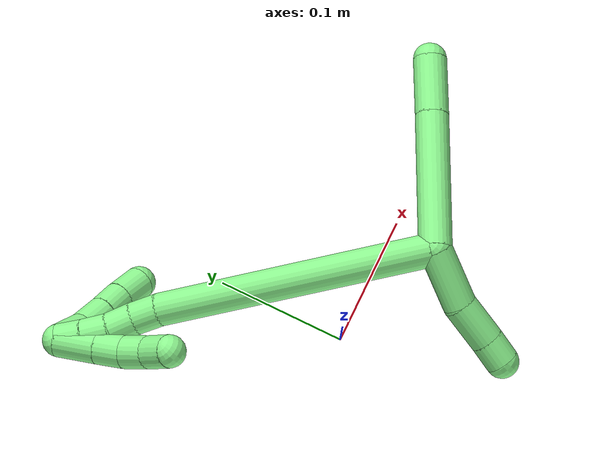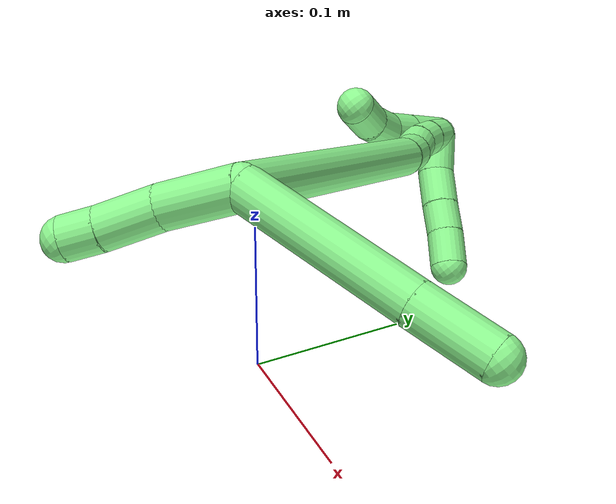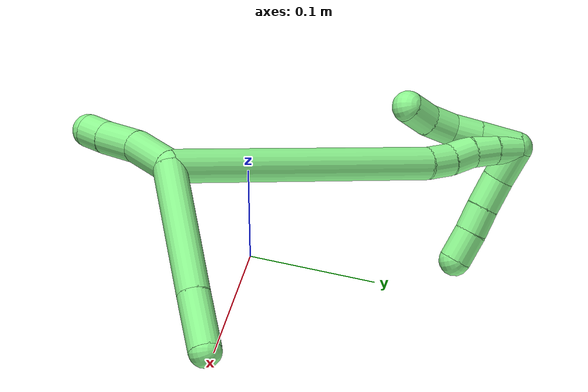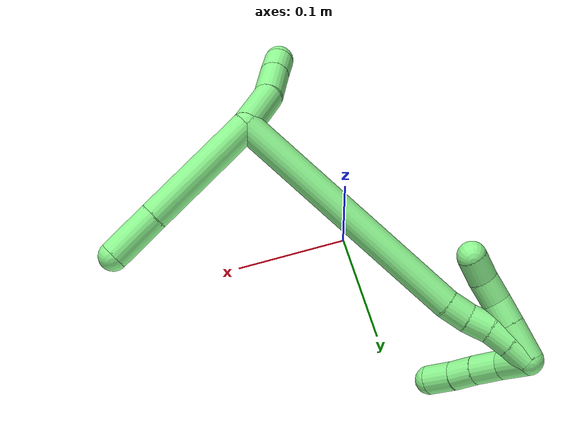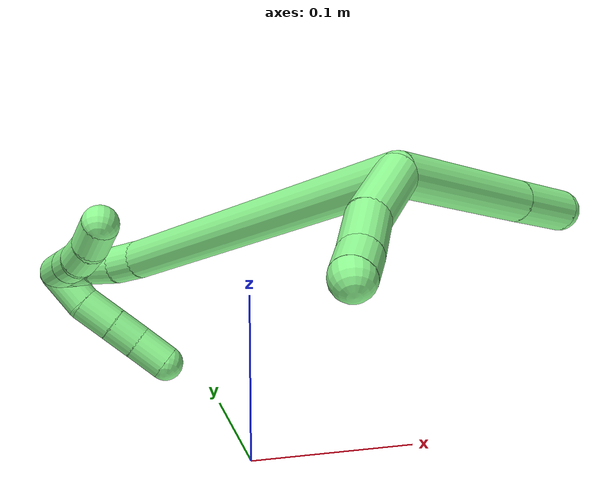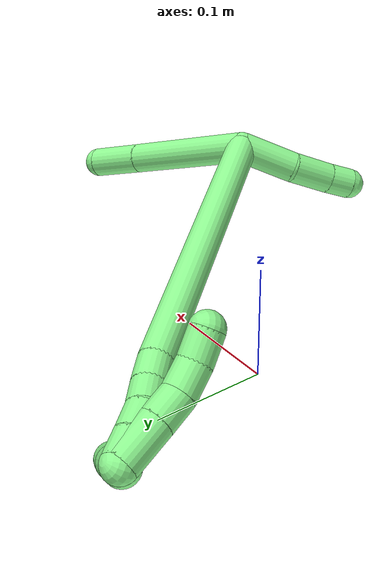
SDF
<sdf version="1.7">
 <world name="default">
  <model name="13">
   <static>0</static>
   <link name="13">
    <collision name="collision-cylinder-e_1_2_8">
     <pose>0.02866 0.040515 0.016979 -1.17396 0.578073 -0.390564</pose>
     <geometry><cylinder><radius>0.0125</radius><length>0.104903</length></cylinder></geometry>
     <surface>
      <friction><ode><mu>1.16</mu><mu2>1.16</mu2><slip1>0</slip1><slip2>0</slip2></ode></friction>
      <contact><ode><kp>1e+06</kp><kd>1</kd><max_vel>0</max_vel><min_depth>0.001</min_depth></ode></contact>
     </surface>
    </collision>
    <visual name="visual-cylinder-e_1_2_8">
     <pose>0.02866 0.040515 0.016979 -1.17396 0.578073 -0.390564</pose>
     <geometry><cylinder><radius>0.0125</radius><length>0.104903</length></cylinder></geometry>
     <material><ambient>0.564706 0.984314 0.572549 1</ambient></material>
    </visual>
    <collision name="collision-cylinder-e_2_8_6">
     <pose>0.069552 0.098411 0.041491 -1.16182 0.573362 -0.382328</pose>
     <geometry><cylinder><radius>0.0125</radius><length>0.045097</length></cylinder></geometry>
     <surface>
      <friction><ode><mu>1.16</mu><mu2>1.16</mu2><slip1>0</slip1><slip2>0</slip2></ode></friction>
      <contact><ode><kp>1e+06</kp><kd>1</kd><max_vel>0</max_vel><min_depth>0.001</min_depth></ode></contact>
     </surface>
    </collision>
    <visual name="visual-cylinder-e_2_8_6">
     <pose>0.069552 0.098411 0.041491 -1.16182 0.573362 -0.382328</pose>
     <geometry><cylinder><radius>0.0125</radius><length>0.045097</length></cylinder></geometry>
     <material><ambient>0.564706 0.984314 0.572549 1</ambient></material>
    </visual>
    <collision name="collision-cylinder-e_1_2_9">
     <pose>-0.007939 -0.007455 -0.020168 2.78754 -0.353712 -1.5698</pose>
     <geometry><cylinder><radius>0.0125</radius><length>0.045841</length></cylinder></geometry>
     <surface>
      <friction><ode><mu>1.16</mu><mu2>1.16</mu2><slip1>0</slip1><slip2>0</slip2></ode></friction>
      <contact><ode><kp>1e+06</kp><kd>1</kd><max_vel>0</max_vel><min_depth>0.001</min_depth></ode></contact>
     </surface>
    </collision>
    <visual name="visual-cylinder-e_1_2_9">
     <pose>-0.007939 -0.007455 -0.020168 2.78754 -0.353712 -1.5698</pose>
     <geometry><cylinder><radius>0.0125</radius><length>0.045841</length></cylinder></geometry>
     <material><ambient>0.564706 0.984314 0.572549 1</ambient></material>
    </visual>
    <collision name="collision-cylinder-e_2_9_10">
     <pose>-0.017978 -0.020175 -0.056308 2.82312 -0.1242 -0.738808</pose>
     <geometry><cylinder><radius>0.0125</radius><length>0.033896</length></cylinder></geometry>
     <surface>
      <friction><ode><mu>1.16</mu><mu2>1.16</mu2><slip1>0</slip1><slip2>0</slip2></ode></friction>
      <contact><ode><kp>1e+06</kp><kd>1</kd><max_vel>0</max_vel><min_depth>0.001</min_depth></ode></contact>
     </surface>
    </collision>
    <visual name="visual-cylinder-e_2_9_10">
     <pose>-0.017978 -0.020175 -0.056308 2.82312 -0.1242 -0.738808</pose>
     <geometry><cylinder><radius>0.0125</radius><length>0.033896</length></cylinder></geometry>
     <material><ambient>0.564706 0.984314 0.572549 1</ambient></material>
    </visual>
    <collision name="collision-cylinder-e_3_10_5">
     <pose>-0.021584 -0.029181 -0.081574 2.75904 -0.149189 -0.736642</pose>
     <geometry><cylinder><radius>0.0125</radius><length>0.020262</length></cylinder></geometry>
     <surface>
      <friction><ode><mu>1.16</mu><mu2>1.16</mu2><slip1>0</slip1><slip2>0</slip2></ode></friction>
      <contact><ode><kp>1e+06</kp><kd>1</kd><max_vel>0</max_vel><min_depth>0.001</min_depth></ode></contact>
     </surface>
    </collision>
    <visual name="visual-cylinder-e_3_10_5">
     <pose>-0.021584 -0.029181 -0.081574 2.75904 -0.149189 -0.736642</pose>
     <geometry><cylinder><radius>0.0125</radius><length>0.020262</length></cylinder></geometry>
     <material><ambient>0.564706 0.984314 0.572549 1</ambient></material>
    </visual>
    <collision name="collision-cylinder-e_1_2_11">
     <pose>-0.094405 0.044099 0.032809 -0.931159 -1.04355 0.562394</pose>
     <geometry><cylinder><radius>0.0125</radius><length>0.218481</length></cylinder></geometry>
     <surface>
      <friction><ode><mu>1.16</mu><mu2>1.16</mu2><slip1>0</slip1><slip2>0</slip2></ode></friction>
      <contact><ode><kp>1e+06</kp><kd>1</kd><max_vel>0</max_vel><min_depth>0.001</min_depth></ode></contact>
     </surface>
    </collision>
    <visual name="visual-cylinder-e_1_2_11">
     <pose>-0.094405 0.044099 0.032809 -0.931159 -1.04355 0.562394</pose>
     <geometry><cylinder><radius>0.0125</radius><length>0.218481</length></cylinder></geometry>
     <material><ambient>0.564706 0.984314 0.572549 1</ambient></material>
    </visual>
    <collision name="collision-cylinder-e_2_11_12">
     <pose>-0.198434 0.091153 0.068356 -0.823416 -1.17436 0.565606</pose>
     <geometry><cylinder><radius>0.0125</radius><length>0.020865</length></cylinder></geometry>
     <surface>
      <friction><ode><mu>1.16</mu><mu2>1.16</mu2><slip1>0</slip1><slip2>0</slip2></ode></friction>
      <contact><ode><kp>1e+06</kp><kd>1</kd><max_vel>0</max_vel><min_depth>0.001</min_depth></ode></contact>
     </surface>
    </collision>
    <visual name="visual-cylinder-e_2_11_12">
     <pose>-0.198434 0.091153 0.068356 -0.823416 -1.17436 0.565606</pose>
     <geometry><cylinder><radius>0.0125</radius><length>0.020865</length></cylinder></geometry>
     <material><ambient>0.564706 0.984314 0.572549 1</ambient></material>
    </visual>
    <collision name="collision-cylinder-e_3_12_13">
     <pose>-0.217628 0.095292 0.074237 -0.360364 -1.23322 0.256807</pose>
     <geometry><cylinder><radius>0.0125</radius><length>0.020287</length></cylinder></geometry>
     <surface>
      <friction><ode><mu>1.16</mu><mu2>1.16</mu2><slip1>0</slip1><slip2>0</slip2></ode></friction>
      <contact><ode><kp>1e+06</kp><kd>1</kd><max_vel>0</max_vel><min_depth>0.001</min_depth></ode></contact>
     </surface>
    </collision>
    <visual name="visual-cylinder-e_3_12_13">
     <pose>-0.217628 0.095292 0.074237 -0.360364 -1.23322 0.256807</pose>
     <geometry><cylinder><radius>0.0125</radius><length>0.020287</length></cylinder></geometry>
     <material><ambient>0.564706 0.984314 0.572549 1</ambient></material>
    </visual>
    <collision name="collision-cylinder-e_4_13_14">
     <pose>-0.236068 0.099464 0.081151 -0.670126 -1.07385 0.408742</pose>
     <geometry><cylinder><radius>0.0125</radius><length>0.020179</length></cylinder></geometry>
     <surface>
      <friction><ode><mu>1.16</mu><mu2>1.16</mu2><slip1>0</slip1><slip2>0</slip2></ode></friction>
      <contact><ode><kp>1e+06</kp><kd>1</kd><max_vel>0</max_vel><min_depth>0.001</min_depth></ode></contact>
     </surface>
    </collision>
    <visual name="visual-cylinder-e_4_13_14">
     <pose>-0.236068 0.099464 0.081151 -0.670126 -1.07385 0.408742</pose>
     <geometry><cylinder><radius>0.0125</radius><length>0.020179</length></cylinder></geometry>
     <material><ambient>0.564706 0.984314 0.572549 1</ambient></material>
    </visual>
    <collision name="collision-cylinder-e_5_14_1">
     <pose>-0.253574 0.106236 0.088524 -0.81003 -1.02667 0.474278</pose>
     <geometry><cylinder><radius>0.0125</radius><length>0.020188</length></cylinder></geometry>
     <surface>
      <friction><ode><mu>1.16</mu><mu2>1.16</mu2><slip1>0</slip1><slip2>0</slip2></ode></friction>
      <contact><ode><kp>1e+06</kp><kd>1</kd><max_vel>0</max_vel><min_depth>0.001</min_depth></ode></contact>
     </surface>
    </collision>
    <visual name="visual-cylinder-e_5_14_1">
     <pose>-0.253574 0.106236 0.088524 -0.81003 -1.02667 0.474278</pose>
     <geometry><cylinder><radius>0.0125</radius><length>0.020188</length></cylinder></geometry>
     <material><ambient>0.564706 0.984314 0.572549 1</ambient></material>
    </visual>
    <collision name="collision-cylinder-e_1_1_15">
     <pose>-0.25192 0.099834 0.084389 2.22038 0.677423 1.23477</pose>
     <geometry><cylinder><radius>0.0125</radius><length>0.032835</length></cylinder></geometry>
     <surface>
      <friction><ode><mu>1.16</mu><mu2>1.16</mu2><slip1>0</slip1><slip2>0</slip2></ode></friction>
      <contact><ode><kp>1e+06</kp><kd>1</kd><max_vel>0</max_vel><min_depth>0.001</min_depth></ode></contact>
     </surface>
    </collision>
    <visual name="visual-cylinder-e_1_1_15">
     <pose>-0.25192 0.099834 0.084389 2.22038 0.677423 1.23477</pose>
     <geometry><cylinder><radius>0.0125</radius><length>0.032835</length></cylinder></geometry>
     <material><ambient>0.564706 0.984314 0.572549 1</ambient></material>
    </visual>
    <collision name="collision-cylinder-e_2_15_16">
     <pose>-0.234596 0.082893 0.071541 2.21857 0.692985 1.25592</pose>
     <geometry><cylinder><radius>0.0125</radius><length>0.022019</length></cylinder></geometry>
     <surface>
      <friction><ode><mu>1.16</mu><mu2>1.16</mu2><slip1>0</slip1><slip2>0</slip2></ode></friction>
      <contact><ode><kp>1e+06</kp><kd>1</kd><max_vel>0</max_vel><min_depth>0.001</min_depth></ode></contact>
     </surface>
    </collision>
    <visual name="visual-cylinder-e_2_15_16">
     <pose>-0.234596 0.082893 0.071541 2.21857 0.692985 1.25592</pose>
     <geometry><cylinder><radius>0.0125</radius><length>0.022019</length></cylinder></geometry>
     <material><ambient>0.564706 0.984314 0.572549 1</ambient></material>
    </visual>
    <collision name="collision-cylinder-e_3_16_17">
     <pose>-0.219721 0.068583 0.064031 1.87823 0.780005 1.0237</pose>
     <geometry><cylinder><radius>0.0125</radius><length>0.022302</length></cylinder></geometry>
     <surface>
      <friction><ode><mu>1.16</mu><mu2>1.16</mu2><slip1>0</slip1><slip2>0</slip2></ode></friction>
      <contact><ode><kp>1e+06</kp><kd>1</kd><max_vel>0</max_vel><min_depth>0.001</min_depth></ode></contact>
     </surface>
    </collision>
    <visual name="visual-cylinder-e_3_16_17">
     <pose>-0.219721 0.068583 0.064031 1.87823 0.780005 1.0237</pose>
     <geometry><cylinder><radius>0.0125</radius><length>0.022302</length></cylinder></geometry>
     <material><ambient>0.564706 0.984314 0.572549 1</ambient></material>
    </visual>
    <collision name="collision-cylinder-e_4_17_4">
     <pose>-0.204373 0.052418 0.061525 1.58318 0.716998 0.725176</pose>
     <geometry><cylinder><radius>0.0125</radius><length>0.022844</length></cylinder></geometry>
     <surface>
      <friction><ode><mu>1.16</mu><mu2>1.16</mu2><slip1>0</slip1><slip2>0</slip2></ode></friction>
      <contact><ode><kp>1e+06</kp><kd>1</kd><max_vel>0</max_vel><min_depth>0.001</min_depth></ode></contact>
     </surface>
    </collision>
    <visual name="visual-cylinder-e_4_17_4">
     <pose>-0.204373 0.052418 0.061525 1.58318 0.716998 0.725176</pose>
     <geometry><cylinder><radius>0.0125</radius><length>0.022844</length></cylinder></geometry>
     <material><ambient>0.564706 0.984314 0.572549 1</ambient></material>
    </visual>
    <collision name="collision-cylinder-e_1_1_18">
     <pose>-0.255685 0.119015 0.083239 -2.35026 0.476371 -1.05307</pose>
     <geometry><cylinder><radius>0.0125</radius><length>0.028457</length></cylinder></geometry>
     <surface>
      <friction><ode><mu>1.16</mu><mu2>1.16</mu2><slip1>0</slip1><slip2>0</slip2></ode></friction>
      <contact><ode><kp>1e+06</kp><kd>1</kd><max_vel>0</max_vel><min_depth>0.001</min_depth></ode></contact>
     </surface>
    </collision>
    <visual name="visual-cylinder-e_1_1_18">
     <pose>-0.255685 0.119015 0.083239 -2.35026 0.476371 -1.05307</pose>
     <geometry><cylinder><radius>0.0125</radius><length>0.028457</length></cylinder></geometry>
     <material><ambient>0.564706 0.984314 0.572549 1</ambient></material>
    </visual>
    <collision name="collision-cylinder-e_2_18_19">
     <pose>-0.241137 0.136079 0.068524 -2.19612 0.678459 -1.20796</pose>
     <geometry><cylinder><radius>0.0125</radius><length>0.02557</length></cylinder></geometry>
     <surface>
      <friction><ode><mu>1.16</mu><mu2>1.16</mu2><slip1>0</slip1><slip2>0</slip2></ode></friction>
      <contact><ode><kp>1e+06</kp><kd>1</kd><max_vel>0</max_vel><min_depth>0.001</min_depth></ode></contact>
     </surface>
    </collision>
    <visual name="visual-cylinder-e_2_18_19">
     <pose>-0.241137 0.136079 0.068524 -2.19612 0.678459 -1.20796</pose>
     <geometry><cylinder><radius>0.0125</radius><length>0.02557</length></cylinder></geometry>
     <material><ambient>0.564706 0.984314 0.572549 1</ambient></material>
    </visual>
    <collision name="collision-cylinder-e_3_19_20">
     <pose>-0.226607 0.151258 0.058116 -2.14335 0.655754 -1.11568</pose>
     <geometry><cylinder><radius>0.0125</radius><length>0.02134</length></cylinder></geometry>
     <surface>
      <friction><ode><mu>1.16</mu><mu2>1.16</mu2><slip1>0</slip1><slip2>0</slip2></ode></friction>
      <contact><ode><kp>1e+06</kp><kd>1</kd><max_vel>0</max_vel><min_depth>0.001</min_depth></ode></contact>
     </surface>
    </collision>
    <visual name="visual-cylinder-e_3_19_20">
     <pose>-0.226607 0.151258 0.058116 -2.14335 0.655754 -1.11568</pose>
     <geometry><cylinder><radius>0.0125</radius><length>0.02134</length></cylinder></geometry>
     <material><ambient>0.564706 0.984314 0.572549 1</ambient></material>
    </visual>
    <collision name="collision-cylinder-e_4_20_3">
     <pose>-0.21237 0.165945 0.047661 -2.23008 0.67851 -1.24797</pose>
     <geometry><cylinder><radius>0.0125</radius><length>0.024632</length></cylinder></geometry>
     <surface>
      <friction><ode><mu>1.16</mu><mu2>1.16</mu2><slip1>0</slip1><slip2>0</slip2></ode></friction>
      <contact><ode><kp>1e+06</kp><kd>1</kd><max_vel>0</max_vel><min_depth>0.001</min_depth></ode></contact>
     </surface>
    </collision>
    <visual name="visual-cylinder-e_4_20_3">
     <pose>-0.21237 0.165945 0.047661 -2.23008 0.67851 -1.24797</pose>
     <geometry><cylinder><radius>0.0125</radius><length>0.024632</length></cylinder></geometry>
     <material><ambient>0.564706 0.984314 0.572549 1</ambient></material>
    </visual>
    <collision name="collision-sphere-3">
     <pose>-0.204641 0.173524 0.041788 0 -0 0</pose>
     <geometry><sphere><radius>0.0125</radius></sphere></geometry>
     <surface>
      <friction><ode><mu>1.16</mu><mu2>1.16</mu2><slip1>0</slip1><slip2>0</slip2></ode></friction>
      <contact><ode><kp>1e+06</kp><kd>1</kd><max_vel>0</max_vel><min_depth>0.001</min_depth></ode></contact>
     </surface>
    </collision>
    <visual name="visual-sphere-3">
     <pose>-0.204641 0.173524 0.041788 0 -0 0</pose>
     <geometry><sphere><radius>0.0125</radius></sphere></geometry>
     <material><ambient>0.564706 0.984314 0.572549 1</ambient></material>
    </visual>
    <collision name="collision-sphere-20">
     <pose>-0.2201 0.158366 0.053534 0 -0 0</pose>
     <geometry><sphere><radius>0.0125</radius></sphere></geometry>
     <surface>
      <friction><ode><mu>1.16</mu><mu2>1.16</mu2><slip1>0</slip1><slip2>0</slip2></ode></friction>
      <contact><ode><kp>1e+06</kp><kd>1</kd><max_vel>0</max_vel><min_depth>0.001</min_depth></ode></contact>
     </surface>
    </collision>
    <visual name="visual-sphere-20">
     <pose>-0.2201 0.158366 0.053534 0 -0 0</pose>
     <geometry><sphere><radius>0.0125</radius></sphere></geometry>
     <material><ambient>0.564706 0.984314 0.572549 1</ambient></material>
    </visual>
    <collision name="collision-sphere-19">
     <pose>-0.233113 0.14415 0.062698 0 -0 0</pose>
     <geometry><sphere><radius>0.0125</radius></sphere></geometry>
     <surface>
      <friction><ode><mu>1.16</mu><mu2>1.16</mu2><slip1>0</slip1><slip2>0</slip2></ode></friction>
      <contact><ode><kp>1e+06</kp><kd>1</kd><max_vel>0</max_vel><min_depth>0.001</min_depth></ode></contact>
     </surface>
    </collision>
    <visual name="visual-sphere-19">
     <pose>-0.233113 0.14415 0.062698 0 -0 0</pose>
     <geometry><sphere><radius>0.0125</radius></sphere></geometry>
     <material><ambient>0.564706 0.984314 0.572549 1</ambient></material>
    </visual>
    <collision name="collision-sphere-5">
     <pose>-0.023089 -0.032921 -0.090869 0 -0 0</pose>
     <geometry><sphere><radius>0.0125</radius></sphere></geometry>
     <surface>
      <friction><ode><mu>1.16</mu><mu2>1.16</mu2><slip1>0</slip1><slip2>0</slip2></ode></friction>
      <contact><ode><kp>1e+06</kp><kd>1</kd><max_vel>0</max_vel><min_depth>0.001</min_depth></ode></contact>
     </surface>
    </collision>
    <visual name="visual-sphere-5">
     <pose>-0.023089 -0.032921 -0.090869 0 -0 0</pose>
     <geometry><sphere><radius>0.0125</radius></sphere></geometry>
     <material><ambient>0.564706 0.984314 0.572549 1</ambient></material>
    </visual>
    <collision name="collision-sphere-10">
     <pose>-0.020078 -0.025441 -0.07228 0 -0 0</pose>
     <geometry><sphere><radius>0.0125</radius></sphere></geometry>
     <surface>
      <friction><ode><mu>1.16</mu><mu2>1.16</mu2><slip1>0</slip1><slip2>0</slip2></ode></friction>
      <contact><ode><kp>1e+06</kp><kd>1</kd><max_vel>0</max_vel><min_depth>0.001</min_depth></ode></contact>
     </surface>
    </collision>
    <visual name="visual-sphere-10">
     <pose>-0.020078 -0.025441 -0.07228 0 -0 0</pose>
     <geometry><sphere><radius>0.0125</radius></sphere></geometry>
     <material><ambient>0.564706 0.984314 0.572549 1</ambient></material>
    </visual>
    <collision name="collision-sphere-6">
     <pose>0.081783 0.115791 0.049024 0 -0 0</pose>
     <geometry><sphere><radius>0.0125</radius></sphere></geometry>
     <surface>
      <friction><ode><mu>1.16</mu><mu2>1.16</mu2><slip1>0</slip1><slip2>0</slip2></ode></friction>
      <contact><ode><kp>1e+06</kp><kd>1</kd><max_vel>0</max_vel><min_depth>0.001</min_depth></ode></contact>
     </surface>
    </collision>
    <visual name="visual-sphere-6">
     <pose>0.081783 0.115791 0.049024 0 -0 0</pose>
     <geometry><sphere><radius>0.0125</radius></sphere></geometry>
     <material><ambient>0.564706 0.984314 0.572549 1</ambient></material>
    </visual>
    <collision name="collision-sphere-9">
     <pose>-0.015879 -0.01491 -0.040336 0 -0 0</pose>
     <geometry><sphere><radius>0.0125</radius></sphere></geometry>
     <surface>
      <friction><ode><mu>1.16</mu><mu2>1.16</mu2><slip1>0</slip1><slip2>0</slip2></ode></friction>
      <contact><ode><kp>1e+06</kp><kd>1</kd><max_vel>0</max_vel><min_depth>0.001</min_depth></ode></contact>
     </surface>
    </collision>
    <visual name="visual-sphere-9">
     <pose>-0.015879 -0.01491 -0.040336 0 -0 0</pose>
     <geometry><sphere><radius>0.0125</radius></sphere></geometry>
     <material><ambient>0.564706 0.984314 0.572549 1</ambient></material>
    </visual>
    <collision name="collision-sphere-2">
     <geometry><sphere><radius>0.0125</radius></sphere></geometry>
     <surface>
      <friction><ode><mu>1.16</mu><mu2>1.16</mu2><slip1>0</slip1><slip2>0</slip2></ode></friction>
      <contact><ode><kp>1e+06</kp><kd>1</kd><max_vel>0</max_vel><min_depth>0.001</min_depth></ode></contact>
     </surface>
    </collision>
    <visual name="visual-sphere-2">
     <geometry><sphere><radius>0.0125</radius></sphere></geometry>
     <material><ambient>0.564706 0.984314 0.572549 1</ambient></material>
    </visual>
    <collision name="collision-sphere-8">
     <pose>0.05732 0.08103 0.033958 0 -0 0</pose>
     <geometry><sphere><radius>0.0125</radius></sphere></geometry>
     <surface>
      <friction><ode><mu>1.16</mu><mu2>1.16</mu2><slip1>0</slip1><slip2>0</slip2></ode></friction>
      <contact><ode><kp>1e+06</kp><kd>1</kd><max_vel>0</max_vel><min_depth>0.001</min_depth></ode></contact>
     </surface>
    </collision>
    <visual name="visual-sphere-8">
     <pose>0.05732 0.08103 0.033958 0 -0 0</pose>
     <geometry><sphere><radius>0.0125</radius></sphere></geometry>
     <material><ambient>0.564706 0.984314 0.572549 1</ambient></material>
    </visual>
    <collision name="collision-sphere-11">
     <pose>-0.188811 0.088198 0.065618 0 -0 0</pose>
     <geometry><sphere><radius>0.0125</radius></sphere></geometry>
     <surface>
      <friction><ode><mu>1.16</mu><mu2>1.16</mu2><slip1>0</slip1><slip2>0</slip2></ode></friction>
      <contact><ode><kp>1e+06</kp><kd>1</kd><max_vel>0</max_vel><min_depth>0.001</min_depth></ode></contact>
     </surface>
    </collision>
    <visual name="visual-sphere-11">
     <pose>-0.188811 0.088198 0.065618 0 -0 0</pose>
     <geometry><sphere><radius>0.0125</radius></sphere></geometry>
     <material><ambient>0.564706 0.984314 0.572549 1</ambient></material>
    </visual>
    <collision name="collision-sphere-12">
     <pose>-0.208057 0.094107 0.071094 0 -0 0</pose>
     <geometry><sphere><radius>0.0125</radius></sphere></geometry>
     <surface>
      <friction><ode><mu>1.16</mu><mu2>1.16</mu2><slip1>0</slip1><slip2>0</slip2></ode></friction>
      <contact><ode><kp>1e+06</kp><kd>1</kd><max_vel>0</max_vel><min_depth>0.001</min_depth></ode></contact>
     </surface>
    </collision>
    <visual name="visual-sphere-12">
     <pose>-0.208057 0.094107 0.071094 0 -0 0</pose>
     <geometry><sphere><radius>0.0125</radius></sphere></geometry>
     <material><ambient>0.564706 0.984314 0.572549 1</ambient></material>
    </visual>
    <collision name="collision-sphere-13">
     <pose>-0.227199 0.096476 0.077381 0 -0 0</pose>
     <geometry><sphere><radius>0.0125</radius></sphere></geometry>
     <surface>
      <friction><ode><mu>1.16</mu><mu2>1.16</mu2><slip1>0</slip1><slip2>0</slip2></ode></friction>
      <contact><ode><kp>1e+06</kp><kd>1</kd><max_vel>0</max_vel><min_depth>0.001</min_depth></ode></contact>
     </surface>
    </collision>
    <visual name="visual-sphere-13">
     <pose>-0.227199 0.096476 0.077381 0 -0 0</pose>
     <geometry><sphere><radius>0.0125</radius></sphere></geometry>
     <material><ambient>0.564706 0.984314 0.572549 1</ambient></material>
    </visual>
    <collision name="collision-sphere-14">
     <pose>-0.244937 0.102451 0.084921 0 -0 0</pose>
     <geometry><sphere><radius>0.0125</radius></sphere></geometry>
     <surface>
      <friction><ode><mu>1.16</mu><mu2>1.16</mu2><slip1>0</slip1><slip2>0</slip2></ode></friction>
      <contact><ode><kp>1e+06</kp><kd>1</kd><max_vel>0</max_vel><min_depth>0.001</min_depth></ode></contact>
     </surface>
    </collision>
    <visual name="visual-sphere-14">
     <pose>-0.244937 0.102451 0.084921 0 -0 0</pose>
     <geometry><sphere><radius>0.0125</radius></sphere></geometry>
     <material><ambient>0.564706 0.984314 0.572549 1</ambient></material>
    </visual>
    <collision name="collision-sphere-1">
     <pose>-0.26221 0.110021 0.092127 0 -0 0</pose>
     <geometry><sphere><radius>0.0125</radius></sphere></geometry>
     <surface>
      <friction><ode><mu>1.16</mu><mu2>1.16</mu2><slip1>0</slip1><slip2>0</slip2></ode></friction>
      <contact><ode><kp>1e+06</kp><kd>1</kd><max_vel>0</max_vel><min_depth>0.001</min_depth></ode></contact>
     </surface>
    </collision>
    <visual name="visual-sphere-1">
     <pose>-0.26221 0.110021 0.092127 0 -0 0</pose>
     <geometry><sphere><radius>0.0125</radius></sphere></geometry>
     <material><ambient>0.564706 0.984314 0.572549 1</ambient></material>
    </visual>
    <collision name="collision-sphere-18">
     <pose>-0.249161 0.128009 0.074351 0 -0 0</pose>
     <geometry><sphere><radius>0.0125</radius></sphere></geometry>
     <surface>
      <friction><ode><mu>1.16</mu><mu2>1.16</mu2><slip1>0</slip1><slip2>0</slip2></ode></friction>
      <contact><ode><kp>1e+06</kp><kd>1</kd><max_vel>0</max_vel><min_depth>0.001</min_depth></ode></contact>
     </surface>
    </collision>
    <visual name="visual-sphere-18">
     <pose>-0.249161 0.128009 0.074351 0 -0 0</pose>
     <geometry><sphere><radius>0.0125</radius></sphere></geometry>
     <material><ambient>0.564706 0.984314 0.572549 1</ambient></material>
    </visual>
    <collision name="collision-sphere-15">
     <pose>-0.241629 0.089647 0.076652 0 -0 0</pose>
     <geometry><sphere><radius>0.0125</radius></sphere></geometry>
     <surface>
      <friction><ode><mu>1.16</mu><mu2>1.16</mu2><slip1>0</slip1><slip2>0</slip2></ode></friction>
      <contact><ode><kp>1e+06</kp><kd>1</kd><max_vel>0</max_vel><min_depth>0.001</min_depth></ode></contact>
     </surface>
    </collision>
    <visual name="visual-sphere-15">
     <pose>-0.241629 0.089647 0.076652 0 -0 0</pose>
     <geometry><sphere><radius>0.0125</radius></sphere></geometry>
     <material><ambient>0.564706 0.984314 0.572549 1</ambient></material>
    </visual>
    <collision name="collision-sphere-16">
     <pose>-0.227563 0.076139 0.06643 0 -0 0</pose>
     <geometry><sphere><radius>0.0125</radius></sphere></geometry>
     <surface>
      <friction><ode><mu>1.16</mu><mu2>1.16</mu2><slip1>0</slip1><slip2>0</slip2></ode></friction>
      <contact><ode><kp>1e+06</kp><kd>1</kd><max_vel>0</max_vel><min_depth>0.001</min_depth></ode></contact>
     </surface>
    </collision>
    <visual name="visual-sphere-16">
     <pose>-0.227563 0.076139 0.06643 0 -0 0</pose>
     <geometry><sphere><radius>0.0125</radius></sphere></geometry>
     <material><ambient>0.564706 0.984314 0.572549 1</ambient></material>
    </visual>
    <collision name="collision-sphere-17">
     <pose>-0.211878 0.061027 0.061632 0 -0 0</pose>
     <geometry><sphere><radius>0.0125</radius></sphere></geometry>
     <surface>
      <friction><ode><mu>1.16</mu><mu2>1.16</mu2><slip1>0</slip1><slip2>0</slip2></ode></friction>
      <contact><ode><kp>1e+06</kp><kd>1</kd><max_vel>0</max_vel><min_depth>0.001</min_depth></ode></contact>
     </surface>
    </collision>
    <visual name="visual-sphere-17">
     <pose>-0.211878 0.061027 0.061632 0 -0 0</pose>
     <geometry><sphere><radius>0.0125</radius></sphere></geometry>
     <material><ambient>0.564706 0.984314 0.572549 1</ambient></material>
    </visual>
    <collision name="collision-sphere-4">
     <pose>-0.196867 0.043809 0.061419 0 -0 0</pose>
     <geometry><sphere><radius>0.0125</radius></sphere></geometry>
     <surface>
      <friction><ode><mu>1.16</mu><mu2>1.16</mu2><slip1>0</slip1><slip2>0</slip2></ode></friction>
      <contact><ode><kp>1e+06</kp><kd>1</kd><max_vel>0</max_vel><min_depth>0.001</min_depth></ode></contact>
     </surface>
    </collision>
    <visual name="visual-sphere-4">
     <pose>-0.196867 0.043809 0.061419 0 -0 0</pose>
     <geometry><sphere><radius>0.0125</radius></sphere></geometry>
     <material><ambient>0.564706 0.984314 0.572549 1</ambient></material>
    </visual>
    <inertial>
     <pose>-0.107796 0.062273 0.035208 0 -0 0</pose>
     <mass>0.75</mass>
     <inertia>
      <ixx>0.000653</ixx>
      <ixy>0</ixy>
      <ixz>0</ixz>
      <iyy>0.001038</iyy>
      <iyz>0</iyz>
      <izz>0.000259</izz>
     </inertia>
    </inertial>
   </link>
   <pose>0.072992 -0.037936 0.172088 -0.901997 -0.262941 -0.397659</pose>
  </model>
 </world>
</sdf>
